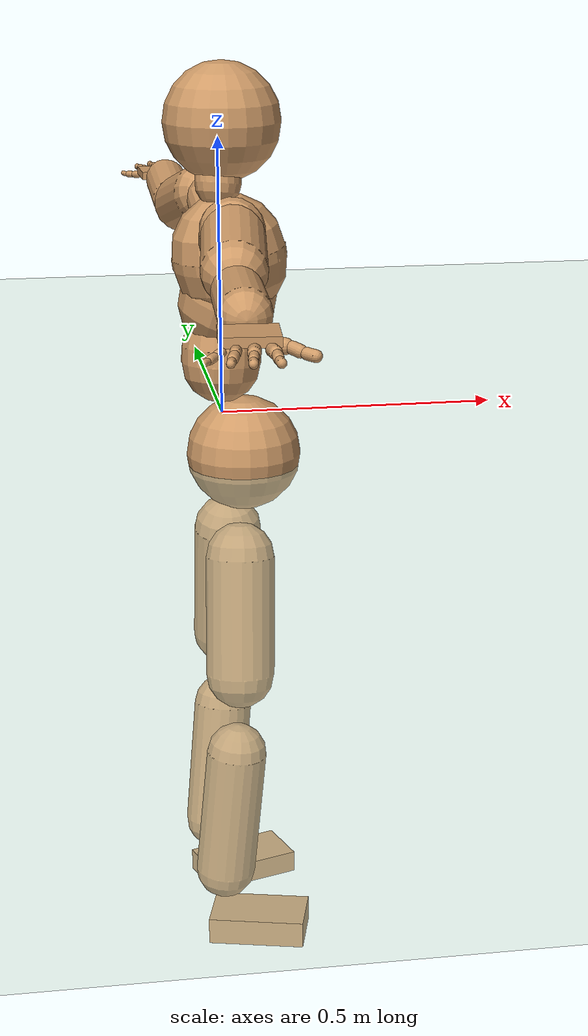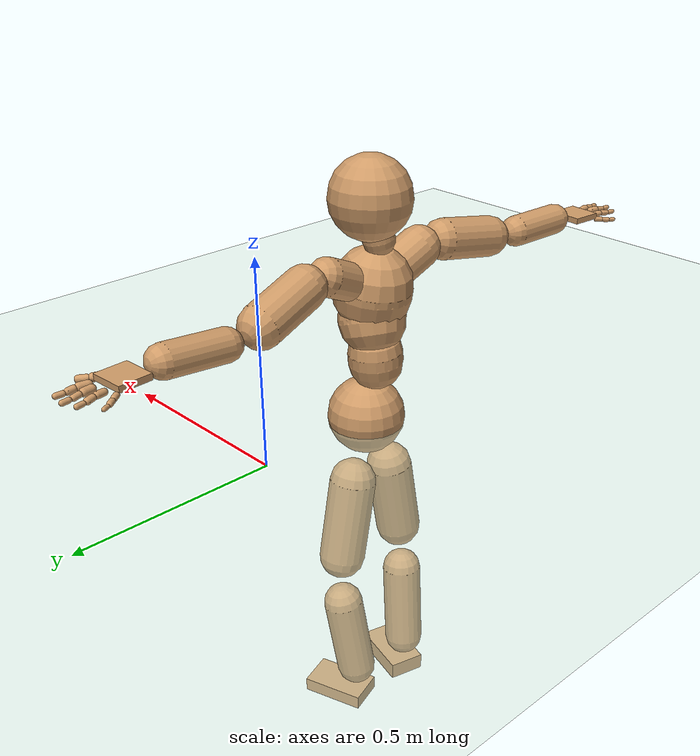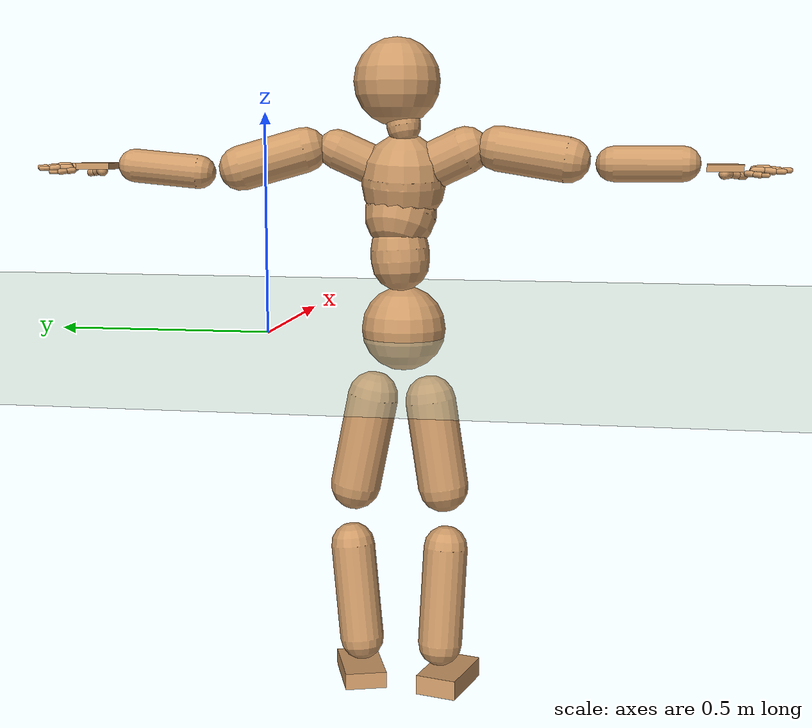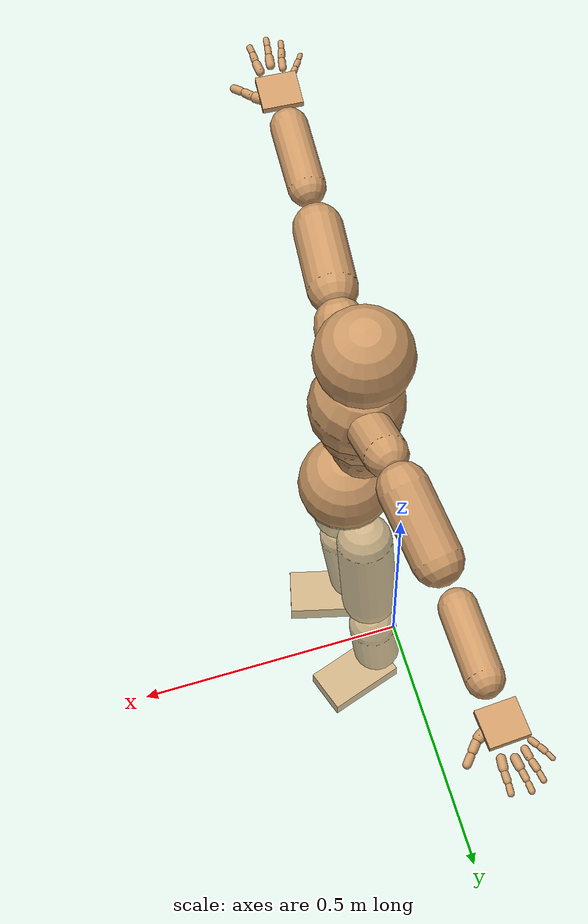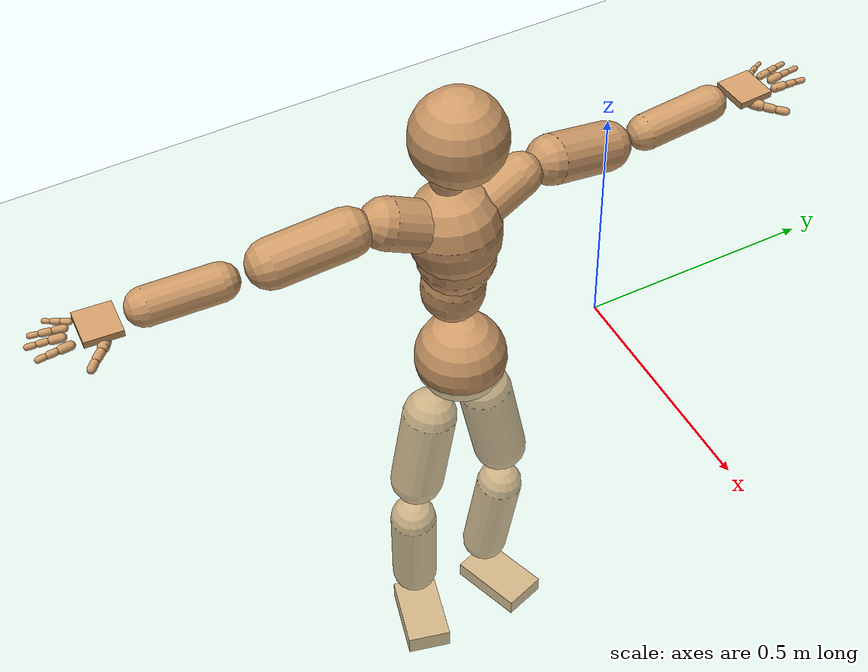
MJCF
<mujoco model="humanoid">
  <compiler coordinate="local" angle="radian"/>
  <default>
    <joint damping="0.0" armature="0.01" stiffness="0.0" limited="true"/>
    <geom conaffinity="1" condim="3" contype="7" margin="0.001" rgba="0.8 0.6 .4 1"/>
  </default>
  <asset>
    <texture type="skybox" builtin="gradient" rgb1=".4 .5 .6" rgb2="0 0 0" width="100" height="100"/>
    <texture builtin="flat" height="1278" mark="cross" markrgb="1 1 1" name="texgeom" random="0.01" rgb1="0.8 0.6 0.4" rgb2="0.8 0.6 0.4" type="cube" width="127"/>
    <texture builtin="checker" height="100" name="texplane" rgb1="0 0 0" rgb2="0.8 0.8 0.8" type="2d" width="100"/>
    <material name="MatPlane" reflectance="0.5" shininess="1" specular="1" texrepeat="60 60" texture="texplane"/>
    <material name="geom" texture="texgeom" texuniform="true"/>
  </asset>
  <worldbody>
    <light cutoff="100" diffuse="1 1 1" dir="-0 0 -1.3" directional="true" exponent="1" pos="0 0 1.3" specular=".1 .1 .1"/>
    <geom conaffinity="1" condim="3" name="floor" pos="0 0 0" rgba="0.8 0.9 0.8 1" size="100 100 .2" type="plane" material="MatPlane"/>
    <body name="Pelvis" pos="0.001 -0.3171 0.018">
      <freejoint name="Pelvis"/>
      <geom type="sphere" contype="1" conaffinity="1" density="500" size="0.0958" pos="0.0000 0.0000 0.0000" name="Pelvis"/>
      <body name="L_Hip" pos="-0.0211 0.0534 -0.0861">
        <joint name="L_Hip_x" type="hinge" pos="0 0 0" axis="1 0 0" stiffness="800" damping="80" armature="0.02" range="-180.0000 180.0000"/>
        <joint name="L_Hip_y" type="hinge" pos="0 0 0" axis="0 1 0" stiffness="800" damping="80" armature="0.02" range="-180.0000 180.0000"/>
        <joint name="L_Hip_z" type="hinge" pos="0 0 0" axis="0 0 1" stiffness="800" damping="80" armature="0.02" range="-180.0000 180.0000"/>
        <geom type="capsule" contype="1" conaffinity="1" density="500" fromto="-0.0005 0.0136 -0.0695 -0.0019 0.0543 -0.2780" size="0.0576" name="L_Hip"/>
        <body name="L_Knee" pos="-0.0024 0.0679 -0.3475">
          <joint name="L_Knee_x" type="hinge" pos="0 0 0" axis="1 0 0" stiffness="800" damping="80" armature="0.02" range="-180.0000 180.0000"/>
          <joint name="L_Knee_y" type="hinge" pos="0 0 0" axis="0 1 0" stiffness="800" damping="80" armature="0.02" range="-180.0000 180.0000"/>
          <joint name="L_Knee_z" type="hinge" pos="0 0 0" axis="0 0 1" stiffness="800" damping="80" armature="0.02" range="-180.0000 180.0000"/>
          <geom type="capsule" contype="1" conaffinity="1" density="500" fromto="-0.0072 -0.0082 -0.0727 -0.0287 -0.0329 -0.2907" size="0.0505" name="L_Knee"/>
          <body name="L_Ankle" pos="-0.0359 -0.0411 -0.3634">
            <joint name="L_Ankle_x" type="hinge" pos="0 0 0" axis="1 0 0" stiffness="800" damping="80" armature="0.02" range="-180.0000 180.0000"/>
            <joint name="L_Ankle_y" type="hinge" pos="0 0 0" axis="0 1 0" stiffness="800" damping="80" armature="0.02" range="-180.0000 180.0000"/>
            <joint name="L_Ankle_z" type="hinge" pos="0 0 0" axis="0 0 1" stiffness="800" damping="80" armature="0.02" range="-180.0000 180.0000"/>
            <geom type="box" contype="1" conaffinity="1" density="500" pos="0.0600 0.0199 -0.0258" size="0.082 0.0477 0.019" quat="0.9872 0.0000 0.0000 0.1596" name="L_Ankle"/>
            <body name="L_Toe" pos="0.1199 0.0398 -0.0516">
              <joint name="L_Toe_x" type="hinge" pos="0 0 0" axis="1 0 0" stiffness="500" damping="50" armature="0.02" range="-180.0000 180.0000"/>
              <joint name="L_Toe_y" type="hinge" pos="0 0 0" axis="0 1 0" stiffness="500" damping="50" armature="0.02" range="-180.0000 180.0000"/>
              <joint name="L_Toe_z" type="hinge" pos="0 0 0" axis="0 0 1" stiffness="500" damping="50" armature="0.02" range="-180.0000 180.0000"/>
              <geom type="box" contype="1" conaffinity="1" density="500" pos="0.0000 0.0000 0.0270" size="0.001 0.0023 0.001" quat="0.9864 0.0000 0.0000 0.1645" name="L_Toe"/>
            </body>
          </body>
        </body>
      </body>
      <body name="R_Hip" pos="-0.014 -0.0545 -0.0961">
        <joint name="R_Hip_x" type="hinge" pos="0 0 0" axis="1 0 0" stiffness="800" damping="80" armature="0.02" range="-180.0000 180.0000"/>
        <joint name="R_Hip_y" type="hinge" pos="0 0 0" axis="0 1 0" stiffness="800" damping="80" armature="0.02" range="-180.0000 180.0000"/>
        <joint name="R_Hip_z" type="hinge" pos="0 0 0" axis="0 0 1" stiffness="800" damping="80" armature="0.02" range="-180.0000 180.0000"/>
        <geom type="capsule" contype="1" conaffinity="1" density="500" fromto="-0.0020 -0.0105 -0.0665 -0.0080 -0.0420 -0.2662" size="0.0575" name="R_Hip"/>
        <body name="R_Knee" pos="-0.0099 -0.0525 -0.3327">
          <joint name="R_Knee_x" type="hinge" pos="0 0 0" axis="1 0 0" stiffness="800" damping="80" armature="0.02" range="-180.0000 180.0000"/>
          <joint name="R_Knee_y" type="hinge" pos="0 0 0" axis="0 1 0" stiffness="800" damping="80" armature="0.02" range="-180.0000 180.0000"/>
          <joint name="R_Knee_z" type="hinge" pos="0 0 0" axis="0 0 1" stiffness="800" damping="80" armature="0.02" range="-180.0000 180.0000"/>
          <geom type="capsule" contype="1" conaffinity="1" density="500" fromto="-0.0072 0.0029 -0.0749 -0.0286 0.0117 -0.2995" size="0.0505" name="R_Knee"/>
          <body name="R_Ankle" pos="-0.0358 0.0146 -0.3744">
            <joint name="R_Ankle_x" type="hinge" pos="0 0 0" axis="1 0 0" stiffness="800" damping="80" armature="0.02" range="-180.0000 180.0000"/>
            <joint name="R_Ankle_y" type="hinge" pos="0 0 0" axis="0 1 0" stiffness="800" damping="80" armature="0.02" range="-180.0000 180.0000"/>
            <joint name="R_Ankle_z" type="hinge" pos="0 0 0" axis="0 0 1" stiffness="800" damping="80" armature="0.02" range="-180.0000 180.0000"/>
            <geom type="box" contype="1" conaffinity="1" density="500" pos="0.0633 -0.0162 -0.0257" size="0.082 0.0477 0.0228" quat="0.9921 0.0000 0.0000 -0.1252" name="R_Ankle"/>
            <body name="R_Toe" pos="0.1265 -0.0324 -0.0513">
              <joint name="R_Toe_x" type="hinge" pos="0 0 0" axis="1 0 0" stiffness="500" damping="50" armature="0.02" range="-180.0000 180.0000"/>
              <joint name="R_Toe_y" type="hinge" pos="0 0 0" axis="0 1 0" stiffness="500" damping="50" armature="0.02" range="-180.0000 180.0000"/>
              <joint name="R_Toe_z" type="hinge" pos="0 0 0" axis="0 0 1" stiffness="500" damping="50" armature="0.02" range="-180.0000 180.0000"/>
              <geom type="box" contype="1" conaffinity="1" density="500" pos="0.0000 0.0000 0.0230" size="0.001 0.0023 0.001" quat="0.9932 0.0000 0.0000 -0.1160" name="R_Toe"/>
            </body>
          </body>
        </body>
      </body>
      <body name="Torso" pos="-0.0372 -0.0013 0.1002">
        <joint name="Torso_x" type="hinge" pos="0 0 0" axis="1 0 0" stiffness="1000" damping="100" armature="0.02" range="-180.0000 180.0000"/>
        <joint name="Torso_y" type="hinge" pos="0 0 0" axis="0 1 0" stiffness="1000" damping="100" armature="0.02" range="-180.0000 180.0000"/>
        <joint name="Torso_z" type="hinge" pos="0 0 0" axis="0 0 1" stiffness="1000" damping="100" armature="0.02" range="-180.0000 180.0000"/>
        <geom type="capsule" contype="1" conaffinity="1" density="500" fromto="0.0029 0.0052 0.0820 0.0019 0.0035 0.0547" size="0.0656" name="Torso"/>
        <body name="Spine" pos="0.0048 0.0087 0.1367">
          <joint name="Spine_x" type="hinge" pos="0 0 0" axis="1 0 0" stiffness="1000" damping="100" armature="0.02" range="-180.0000 180.0000"/>
          <joint name="Spine_y" type="hinge" pos="0 0 0" axis="0 1 0" stiffness="1000" damping="100" armature="0.02" range="-180.0000 180.0000"/>
          <joint name="Spine_z" type="hinge" pos="0 0 0" axis="0 0 1" stiffness="1000" damping="100" armature="0.02" range="-180.0000 180.0000"/>
          <geom type="capsule" contype="1" conaffinity="1" density="500" fromto="0.0115 -0.0047 0.0307 0.0076 -0.0032 0.0204" size="0.0801" name="Spine"/>
          <body name="Chest" pos="0.0191 -0.0079 0.0511">
            <joint name="Chest_x" type="hinge" pos="0 0 0" axis="1 0 0" stiffness="1000" damping="100" armature="0.02" range="-180.0000 180.0000"/>
            <joint name="Chest_y" type="hinge" pos="0 0 0" axis="0 1 0" stiffness="1000" damping="100" armature="0.02" range="-180.0000 180.0000"/>
            <joint name="Chest_z" type="hinge" pos="0 0 0" axis="0 0 1" stiffness="1000" damping="100" armature="0.02" range="-180.0000 180.0000"/>
            <geom type="capsule" contype="1" conaffinity="1" density="500" fromto="-0.0075 -0.0021 0.0545 -0.0050 -0.0014 0.0364" size="0.0938" name="Chest"/>
            <body name="Neck" pos="-0.0252 -0.0084 0.1398">
              <joint name="Neck_x" type="hinge" pos="0 0 0" axis="1 0 0" stiffness="500" damping="50" armature="0.02" range="-180.0000 180.0000"/>
              <joint name="Neck_y" type="hinge" pos="0 0 0" axis="0 1 0" stiffness="500" damping="50" armature="0.02" range="-180.0000 180.0000"/>
              <joint name="Neck_z" type="hinge" pos="0 0 0" axis="0 0 1" stiffness="500" damping="50" armature="0.02" range="-180.0000 180.0000"/>
              <geom type="capsule" contype="1" conaffinity="1" density="500" fromto="0.0024 0.0042 0.0241 0.0096 0.0168 0.0965" size="0.0379" name="Neck"/>
              <body name="Head" pos="0.0121 0.021 0.1207">
                <joint name="Head_x" type="hinge" pos="0 0 0" axis="1 0 0" stiffness="500" damping="50" armature="0.02" range="-180.0000 180.0000"/>
                <joint name="Head_y" type="hinge" pos="0 0 0" axis="0 1 0" stiffness="500" damping="50" armature="0.02" range="-180.0000 180.0000"/>
                <joint name="Head_z" type="hinge" pos="0 0 0" axis="0 0 1" stiffness="500" damping="50" armature="0.02" range="-180.0000 180.0000"/>
                <geom type="sphere" contype="1" conaffinity="1" density="500" size="0.0962" pos="0.0000 0.0000 0.0000" name="Head"/>
              </body>
            </body>
            <body name="L_Thorax" pos="-0.0046 0.04 0.0662">
              <joint name="L_Thorax_x" type="hinge" pos="0 0 0" axis="1 0 0" stiffness="500" damping="50" armature="0.02" range="-180.0000 180.0000"/>
              <joint name="L_Thorax_y" type="hinge" pos="0 0 0" axis="0 1 0" stiffness="500" damping="50" armature="0.02" range="-180.0000 180.0000"/>
              <joint name="L_Thorax_z" type="hinge" pos="0 0 0" axis="0 0 1" stiffness="500" damping="50" armature="0.02" range="-180.0000 180.0000"/>
              <geom type="capsule" contype="1" conaffinity="1" density="500" fromto="-0.0027 0.0264 0.0119 -0.0108 0.1055 0.0476" size="0.0443" name="L_Thorax"/>
              <body name="L_Shoulder" pos="-0.0135 0.1318 0.0595">
                <joint name="L_Shoulder_x" type="hinge" pos="0 0 0" axis="1 0 0" stiffness="500" damping="50" armature="0.02" range="-180.0000 180.0000"/>
                <joint name="L_Shoulder_y" type="hinge" pos="0 0 0" axis="0 1 0" stiffness="500" damping="50" armature="0.02" range="-180.0000 180.0000"/>
                <joint name="L_Shoulder_z" type="hinge" pos="0 0 0" axis="0 0 1" stiffness="500" damping="50" armature="0.02" range="-180.0000 180.0000"/>
                <geom type="capsule" contype="1" conaffinity="1" density="500" fromto="-0.0075 0.0465 -0.0133 -0.0300 0.1859 -0.0534" size="0.0505" name="L_Shoulder"/>
                <body name="L_Elbow" pos="-0.0375 0.2324 -0.0667">
                  <joint name="L_Elbow_x" type="hinge" pos="0 0 0" axis="1 0 0" stiffness="500" damping="50" armature="0.02" range="-720.0000 720.0000"/>
                  <joint name="L_Elbow_y" type="hinge" pos="0 0 0" axis="0 1 0" stiffness="500" damping="50" armature="0.02" range="-720.0000 720.0000"/>
                  <joint name="L_Elbow_z" type="hinge" pos="0 0 0" axis="0 0 1" stiffness="500" damping="50" armature="0.02" range="-720.0000 720.0000"/>
                  <geom type="capsule" contype="1" conaffinity="1" density="500" fromto="-0.0004 0.0494 0.0046 -0.0016 0.1978 0.0182" size="0.0373" name="L_Elbow"/>
                  <body name="L_Wrist" pos="-0.002 0.2472 0.0228">
                    <joint name="L_Wrist_x" type="hinge" pos="0 0 0" axis="1 0 0" stiffness="300" damping="30" armature="0.02" range="-180.0000 180.0000"/>
                    <joint name="L_Wrist_y" type="hinge" pos="0 0 0" axis="0 1 0" stiffness="300" damping="30" armature="0.02" range="-180.0000 180.0000"/>
                    <joint name="L_Wrist_z" type="hinge" pos="0 0 0" axis="0 0 1" stiffness="300" damping="30" armature="0.02" range="-180.0000 180.0000"/>
                    <geom type="box" contype="1" conaffinity="1" density="500" pos="-0.0024 0.0398 -0.0058" size="0.0379 0.0397 0.0072" quat="0.7284 0.0000 0.0000 -0.6852" name="L_Wrist"/>
                    <body name="L_Index1" pos="0.0193 0.0934 -0.0091">
                      <joint name="L_Index1_x" type="hinge" pos="0 0 0" axis="1 0 0" stiffness="100" damping="10" armature="0.02" range="-180.0000 180.0000"/>
                      <joint name="L_Index1_y" type="hinge" pos="0 0 0" axis="0 1 0" stiffness="100" damping="10" armature="0.02" range="-180.0000 180.0000"/>
                      <joint name="L_Index1_z" type="hinge" pos="0 0 0" axis="0 0 1" stiffness="100" damping="10" armature="0.02" range="-180.0000 180.0000"/>
                      <geom type="capsule" contype="1" conaffinity="1" density="500" fromto="0.0007 0.0062 0.0002 0.0026 0.0246 0.0008" size="0.0089" name="L_Index1"/>
                      <body name="L_Index2" pos="0.0033 0.0308 0.0011">
                        <joint name="L_Index2_x" type="hinge" pos="0 0 0" axis="1 0 0" stiffness="100" damping="10" armature="0.02" range="-180.0000 180.0000"/>
                        <joint name="L_Index2_y" type="hinge" pos="0 0 0" axis="0 1 0" stiffness="100" damping="10" armature="0.02" range="-180.0000 180.0000"/>
                        <joint name="L_Index2_z" type="hinge" pos="0 0 0" axis="0 0 1" stiffness="100" damping="10" armature="0.02" range="-180.0000 180.0000"/>
                        <geom type="capsule" contype="1" conaffinity="1" density="500" fromto="-0.0001 0.0044 -0.0005 -0.0003 0.0175 -0.0021" size="0.0073" name="L_Index2"/>
                        <body name="L_Index3" pos="-0.0004 0.0218 -0.0026">
                          <joint name="L_Index3_x" type="hinge" pos="0 0 0" axis="1 0 0" stiffness="100" damping="10" armature="0.02" range="-180.0000 180.0000"/>
                          <joint name="L_Index3_y" type="hinge" pos="0 0 0" axis="0 1 0" stiffness="100" damping="10" armature="0.02" range="-180.0000 180.0000"/>
                          <joint name="L_Index3_z" type="hinge" pos="0 0 0" axis="0 0 1" stiffness="100" damping="10" armature="0.02" range="-180.0000 180.0000"/>
                          <geom type="capsule" contype="1" conaffinity="1" density="500" fromto="0.0003 0.0048 -0.0001 0.0013 0.0191 -0.0005" size="0.0062" name="L_Index3"/>
                        </body>
                      </body>
                    </body>
                    <body name="L_Middle1" pos="-0.0028 0.1007 -0.0068">
                      <joint name="L_Middle1_x" type="hinge" pos="0 0 0" axis="1 0 0" stiffness="100" damping="10" armature="0.02" range="-180.0000 180.0000"/>
                      <joint name="L_Middle1_y" type="hinge" pos="0 0 0" axis="0 1 0" stiffness="100" damping="10" armature="0.02" range="-180.0000 180.0000"/>
                      <joint name="L_Middle1_z" type="hinge" pos="0 0 0" axis="0 0 1" stiffness="100" damping="10" armature="0.02" range="-180.0000 180.0000"/>
                      <geom type="capsule" contype="1" conaffinity="1" density="500" fromto="-0.0008 0.0059 0.0000 -0.0032 0.0236 0.0002" size="0.0089" name="L_Middle1"/>
                      <body name="L_Middle2" pos="-0.004 0.0295 0.0002">
                        <joint name="L_Middle2_x" type="hinge" pos="0 0 0" axis="1 0 0" stiffness="100" damping="10" armature="0.02" range="-180.0000 180.0000"/>
                        <joint name="L_Middle2_y" type="hinge" pos="0 0 0" axis="0 1 0" stiffness="100" damping="10" armature="0.02" range="-180.0000 180.0000"/>
                        <joint name="L_Middle2_z" type="hinge" pos="0 0 0" axis="0 0 1" stiffness="100" damping="10" armature="0.02" range="-180.0000 180.0000"/>
                        <geom type="capsule" contype="1" conaffinity="1" density="500" fromto="-0.0008 0.0045 -0.0004 -0.0033 0.0180 -0.0018" size="0.0067" name="L_Middle2"/>
                        <body name="L_Middle3" pos="-0.0041 0.0225 -0.0022">
                          <joint name="L_Middle3_x" type="hinge" pos="0 0 0" axis="1 0 0" stiffness="100" damping="10" armature="0.02" range="-180.0000 180.0000"/>
                          <joint name="L_Middle3_y" type="hinge" pos="0 0 0" axis="0 1 0" stiffness="100" damping="10" armature="0.02" range="-180.0000 180.0000"/>
                          <joint name="L_Middle3_z" type="hinge" pos="0 0 0" axis="0 0 1" stiffness="100" damping="10" armature="0.02" range="-180.0000 180.0000"/>
                          <geom type="capsule" contype="1" conaffinity="1" density="500" fromto="-0.0004 0.0049 -0.0000 -0.0017 0.0196 -0.0002" size="0.0059" name="L_Middle3"/>
                        </body>
                      </body>
                    </body>
                    <body name="L_Pinky1" pos="-0.0404 0.0774 -0.0145">
                      <joint name="L_Pinky1_x" type="hinge" pos="0 0 0" axis="1 0 0" stiffness="100" damping="10" armature="0.02" range="-180.0000 180.0000"/>
                      <joint name="L_Pinky1_y" type="hinge" pos="0 0 0" axis="0 1 0" stiffness="100" damping="10" armature="0.02" range="-180.0000 180.0000"/>
                      <joint name="L_Pinky1_z" type="hinge" pos="0 0 0" axis="0 0 1" stiffness="100" damping="10" armature="0.02" range="-180.0000 180.0000"/>
                      <geom type="capsule" contype="1" conaffinity="1" density="500" fromto="-0.0023 0.0032 -0.0003 -0.0090 0.0128 -0.0013" size="0.0065" name="L_Pinky1"/>
                      <body name="L_Pinky2" pos="-0.0113 0.0159 -0.0016">
                        <joint name="L_Pinky2_x" type="hinge" pos="0 0 0" axis="1 0 0" stiffness="100" damping="10" armature="0.02" range="-180.0000 180.0000"/>
                        <joint name="L_Pinky2_y" type="hinge" pos="0 0 0" axis="0 1 0" stiffness="100" damping="10" armature="0.02" range="-180.0000 180.0000"/>
                        <joint name="L_Pinky2_z" type="hinge" pos="0 0 0" axis="0 0 1" stiffness="100" damping="10" armature="0.02" range="-180.0000 180.0000"/>
                        <geom type="capsule" contype="1" conaffinity="1" density="500" fromto="-0.0021 0.0031 -0.0004 -0.0085 0.0125 -0.0015" size="0.0062" name="L_Pinky2"/>
                        <body name="L_Pinky3" pos="-0.0106 0.0156 -0.0019">
                          <joint name="L_Pinky3_x" type="hinge" pos="0 0 0" axis="1 0 0" stiffness="100" damping="10" armature="0.02" range="-180.0000 180.0000"/>
                          <joint name="L_Pinky3_y" type="hinge" pos="0 0 0" axis="0 1 0" stiffness="100" damping="10" armature="0.02" range="-180.0000 180.0000"/>
                          <joint name="L_Pinky3_z" type="hinge" pos="0 0 0" axis="0 0 1" stiffness="100" damping="10" armature="0.02" range="-180.0000 180.0000"/>
                          <geom type="capsule" contype="1" conaffinity="1" density="500" fromto="-0.0017 0.0035 0.0000 -0.0069 0.0141 0.0001" size="0.0047" name="L_Pinky3"/>
                        </body>
                      </body>
                    </body>
                    <body name="L_Ring1" pos="-0.0247 0.0896 -0.0094">
                      <joint name="L_Ring1_x" type="hinge" pos="0 0 0" axis="1 0 0" stiffness="100" damping="10" armature="0.02" range="-180.0000 180.0000"/>
                      <joint name="L_Ring1_y" type="hinge" pos="0 0 0" axis="0 1 0" stiffness="100" damping="10" armature="0.02" range="-180.0000 180.0000"/>
                      <joint name="L_Ring1_z" type="hinge" pos="0 0 0" axis="0 0 1" stiffness="100" damping="10" armature="0.02" range="-180.0000 180.0000"/>
                      <geom type="capsule" contype="1" conaffinity="1" density="500" fromto="-0.0009 0.0055 0.0001 -0.0038 0.0219 0.0004" size="0.0076" name="L_Ring1"/>
                      <body name="L_Ring2" pos="-0.0047 0.0273 0.0005">
                        <joint name="L_Ring2_x" type="hinge" pos="0 0 0" axis="1 0 0" stiffness="100" damping="10" armature="0.02" range="-180.0000 180.0000"/>
                        <joint name="L_Ring2_y" type="hinge" pos="0 0 0" axis="0 1 0" stiffness="100" damping="10" armature="0.02" range="-180.0000 180.0000"/>
                        <joint name="L_Ring2_z" type="hinge" pos="0 0 0" axis="0 0 1" stiffness="100" damping="10" armature="0.02" range="-180.0000 180.0000"/>
                        <geom type="capsule" contype="1" conaffinity="1" density="500" fromto="-0.0013 0.0045 -0.0004 -0.0051 0.0178 -0.0017" size="0.0072" name="L_Ring2"/>
                        <body name="L_Ring3" pos="-0.0063 0.0223 -0.0021">
                          <joint name="L_Ring3_x" type="hinge" pos="0 0 0" axis="1 0 0" stiffness="100" damping="10" armature="0.02" range="-180.0000 180.0000"/>
                          <joint name="L_Ring3_y" type="hinge" pos="0 0 0" axis="0 1 0" stiffness="100" damping="10" armature="0.02" range="-180.0000 180.0000"/>
                          <joint name="L_Ring3_z" type="hinge" pos="0 0 0" axis="0 0 1" stiffness="100" damping="10" armature="0.02" range="-180.0000 180.0000"/>
                          <geom type="capsule" contype="1" conaffinity="1" density="500" fromto="-0.0009 0.0049 -0.0000 -0.0035 0.0194 -0.0001" size="0.0056" name="L_Ring3"/>
                        </body>
                      </body>
                    </body>
                    <body name="L_Thumb1" pos="0.0243 0.0366 -0.0186">
                      <joint name="L_Thumb1_x" type="hinge" pos="0 0 0" axis="1 0 0" stiffness="100" damping="10" armature="0.02" range="-180.0000 180.0000"/>
                      <joint name="L_Thumb1_y" type="hinge" pos="0 0 0" axis="0 1 0" stiffness="100" damping="10" armature="0.02" range="-180.0000 180.0000"/>
                      <joint name="L_Thumb1_z" type="hinge" pos="0 0 0" axis="0 0 1" stiffness="100" damping="10" armature="0.02" range="-180.0000 180.0000"/>
                      <geom type="capsule" contype="1" conaffinity="1" density="500" fromto="0.0049 0.0032 0.0003 0.0195 0.0126 0.0013" size="0.0113" name="L_Thumb1"/>
                      <body name="L_Thumb2" pos="0.0244 0.0158 0.0016">
                        <joint name="L_Thumb2_x" type="hinge" pos="0 0 0" axis="1 0 0" stiffness="100" damping="10" armature="0.02" range="-180.0000 180.0000"/>
                        <joint name="L_Thumb2_y" type="hinge" pos="0 0 0" axis="0 1 0" stiffness="100" damping="10" armature="0.02" range="-180.0000 180.0000"/>
                        <joint name="L_Thumb2_z" type="hinge" pos="0 0 0" axis="0 0 1" stiffness="100" damping="10" armature="0.02" range="-180.0000 180.0000"/>
                        <geom type="capsule" contype="1" conaffinity="1" density="500" fromto="0.0031 0.0038 -0.0009 0.0125 0.0152 -0.0034" size="0.0091" name="L_Thumb2"/>
                        <body name="L_Thumb3" pos="0.0156 0.0191 -0.0043">
                          <joint name="L_Thumb3_x" type="hinge" pos="0 0 0" axis="1 0 0" stiffness="100" damping="10" armature="0.02" range="-180.0000 180.0000"/>
                          <joint name="L_Thumb3_y" type="hinge" pos="0 0 0" axis="0 1 0" stiffness="100" damping="10" armature="0.02" range="-180.0000 180.0000"/>
                          <joint name="L_Thumb3_z" type="hinge" pos="0 0 0" axis="0 0 1" stiffness="100" damping="10" armature="0.02" range="-180.0000 180.0000"/>
                          <geom type="capsule" contype="1" conaffinity="1" density="500" fromto="0.0035 0.0042 -0.0005 0.0141 0.0168 -0.0018" size="0.0083" name="L_Thumb3"/>
                        </body>
                      </body>
                    </body>
                  </body>
                </body>
              </body>
            </body>
            <body name="R_Thorax" pos="-0.0075 -0.0423 0.0667">
              <joint name="R_Thorax_x" type="hinge" pos="0 0 0" axis="1 0 0" stiffness="500" damping="50" armature="0.02" range="-180.0000 180.0000"/>
              <joint name="R_Thorax_y" type="hinge" pos="0 0 0" axis="0 1 0" stiffness="500" damping="50" armature="0.02" range="-180.0000 180.0000"/>
              <joint name="R_Thorax_z" type="hinge" pos="0 0 0" axis="0 0 1" stiffness="500" damping="50" armature="0.02" range="-180.0000 180.0000"/>
              <geom type="capsule" contype="1" conaffinity="1" density="500" fromto="-0.0022 -0.0244 0.0114 -0.0087 -0.0977 0.0457" size="0.052" name="R_Thorax"/>
              <body name="R_Shoulder" pos="-0.0109 -0.1221 0.0571">
                <joint name="R_Shoulder_x" type="hinge" pos="0 0 0" axis="1 0 0" stiffness="500" damping="50" armature="0.02" range="-180.0000 180.0000"/>
                <joint name="R_Shoulder_y" type="hinge" pos="0 0 0" axis="0 1 0" stiffness="500" damping="50" armature="0.02" range="-180.0000 180.0000"/>
                <joint name="R_Shoulder_z" type="hinge" pos="0 0 0" axis="0 0 1" stiffness="500" damping="50" armature="0.02" range="-180.0000 180.0000"/>
                <geom type="capsule" contype="1" conaffinity="1" density="500" fromto="-0.0053 -0.0497 -0.0079 -0.0211 -0.1986 -0.0314" size="0.0498" name="R_Shoulder"/>
                <body name="R_Elbow" pos="-0.0263 -0.2483 -0.0393">
                  <joint name="R_Elbow_x" type="hinge" pos="0 0 0" axis="1 0 0" stiffness="500" damping="50" armature="0.02" range="-720.0000 720.0000"/>
                  <joint name="R_Elbow_y" type="hinge" pos="0 0 0" axis="0 1 0" stiffness="500" damping="50" armature="0.02" range="-720.0000 720.0000"/>
                  <joint name="R_Elbow_z" type="hinge" pos="0 0 0" axis="0 0 1" stiffness="500" damping="50" armature="0.02" range="-720.0000 720.0000"/>
                  <geom type="capsule" contype="1" conaffinity="1" density="500" fromto="-0.0023 -0.0480 0.0001 -0.0093 -0.1919 0.0004" size="0.0382" name="R_Elbow"/>
                  <body name="R_Wrist" pos="-0.0116 -0.2399 0.0005">
                    <joint name="R_Wrist_x" type="hinge" pos="0 0 0" axis="1 0 0" stiffness="300" damping="30" armature="0.02" range="-180.0000 180.0000"/>
                    <joint name="R_Wrist_y" type="hinge" pos="0 0 0" axis="0 1 0" stiffness="300" damping="30" armature="0.02" range="-180.0000 180.0000"/>
                    <joint name="R_Wrist_z" type="hinge" pos="0 0 0" axis="0 0 1" stiffness="300" damping="30" armature="0.02" range="-180.0000 180.0000"/>
                    <geom type="box" contype="1" conaffinity="1" density="500" pos="-0.0030 -0.0397 -0.0075" size="0.0379 0.0409 0.0073" quat="0.7332 0.0000 0.0000 0.6800" name="R_Wrist"/>
                    <body name="R_Index1" pos="0.0182 -0.0932 -0.0124">
                      <joint name="R_Index1_x" type="hinge" pos="0 0 0" axis="1 0 0" stiffness="100" damping="10" armature="0.02" range="-180.0000 180.0000"/>
                      <joint name="R_Index1_y" type="hinge" pos="0 0 0" axis="0 1 0" stiffness="100" damping="10" armature="0.02" range="-180.0000 180.0000"/>
                      <joint name="R_Index1_z" type="hinge" pos="0 0 0" axis="0 0 1" stiffness="100" damping="10" armature="0.02" range="-180.0000 180.0000"/>
                      <geom type="capsule" contype="1" conaffinity="1" density="500" fromto="0.0007 -0.0062 0.0002 0.0026 -0.0246 0.0008" size="0.0089" name="R_Index1"/>
                      <body name="R_Index2" pos="0.0033 -0.0308 0.0011">
                        <joint name="R_Index2_x" type="hinge" pos="0 0 0" axis="1 0 0" stiffness="100" damping="10" armature="0.02" range="-180.0000 180.0000"/>
                        <joint name="R_Index2_y" type="hinge" pos="0 0 0" axis="0 1 0" stiffness="100" damping="10" armature="0.02" range="-180.0000 180.0000"/>
                        <joint name="R_Index2_z" type="hinge" pos="0 0 0" axis="0 0 1" stiffness="100" damping="10" armature="0.02" range="-180.0000 180.0000"/>
                        <geom type="capsule" contype="1" conaffinity="1" density="500" fromto="-0.0001 -0.0044 -0.0005 -0.0003 -0.0175 -0.0021" size="0.0073" name="R_Index2"/>
                        <body name="R_Index3" pos="-0.0004 -0.0218 -0.0026">
                          <joint name="R_Index3_x" type="hinge" pos="0 0 0" axis="1 0 0" stiffness="100" damping="10" armature="0.02" range="-180.0000 180.0000"/>
                          <joint name="R_Index3_y" type="hinge" pos="0 0 0" axis="0 1 0" stiffness="100" damping="10" armature="0.02" range="-180.0000 180.0000"/>
                          <joint name="R_Index3_z" type="hinge" pos="0 0 0" axis="0 0 1" stiffness="100" damping="10" armature="0.02" range="-180.0000 180.0000"/>
                          <geom type="capsule" contype="1" conaffinity="1" density="500" fromto="0.0003 -0.0040 -0.0001 0.0013 -0.0159 -0.0005" size="0.0065" name="R_Index3"/>
                        </body>
                      </body>
                    </body>
                    <body name="R_Middle1" pos="-0.0039 -0.1005 -0.0101">
                      <joint name="R_Middle1_x" type="hinge" pos="0 0 0" axis="1 0 0" stiffness="100" damping="10" armature="0.02" range="-180.0000 180.0000"/>
                      <joint name="R_Middle1_y" type="hinge" pos="0 0 0" axis="0 1 0" stiffness="100" damping="10" armature="0.02" range="-180.0000 180.0000"/>
                      <joint name="R_Middle1_z" type="hinge" pos="0 0 0" axis="0 0 1" stiffness="100" damping="10" armature="0.02" range="-180.0000 180.0000"/>
                      <geom type="capsule" contype="1" conaffinity="1" density="500" fromto="-0.0008 -0.0059 0.0000 -0.0032 -0.0236 0.0002" size="0.0089" name="R_Middle1"/>
                      <body name="R_Middle2" pos="-0.004 -0.0295 0.0002">
                        <joint name="R_Middle2_x" type="hinge" pos="0 0 0" axis="1 0 0" stiffness="100" damping="10" armature="0.02" range="-180.0000 180.0000"/>
                        <joint name="R_Middle2_y" type="hinge" pos="0 0 0" axis="0 1 0" stiffness="100" damping="10" armature="0.02" range="-180.0000 180.0000"/>
                        <joint name="R_Middle2_z" type="hinge" pos="0 0 0" axis="0 0 1" stiffness="100" damping="10" armature="0.02" range="-180.0000 180.0000"/>
                        <geom type="capsule" contype="1" conaffinity="1" density="500" fromto="-0.0008 -0.0045 -0.0004 -0.0033 -0.0180 -0.0018" size="0.0067" name="R_Middle2"/>
                        <body name="R_Middle3" pos="-0.0041 -0.0225 -0.0022">
                          <joint name="R_Middle3_x" type="hinge" pos="0 0 0" axis="1 0 0" stiffness="100" damping="10" armature="0.02" range="-180.0000 180.0000"/>
                          <joint name="R_Middle3_y" type="hinge" pos="0 0 0" axis="0 1 0" stiffness="100" damping="10" armature="0.02" range="-180.0000 180.0000"/>
                          <joint name="R_Middle3_z" type="hinge" pos="0 0 0" axis="0 0 1" stiffness="100" damping="10" armature="0.02" range="-180.0000 180.0000"/>
                          <geom type="capsule" contype="1" conaffinity="1" density="500" fromto="-0.0004 -0.0041 -0.0000 -0.0017 -0.0164 -0.0002" size="0.0062" name="R_Middle3"/>
                        </body>
                      </body>
                    </body>
                    <body name="R_Pinky1" pos="-0.0415 -0.0772 -0.0178">
                      <joint name="R_Pinky1_x" type="hinge" pos="0 0 0" axis="1 0 0" stiffness="100" damping="10" armature="0.02" range="-180.0000 180.0000"/>
                      <joint name="R_Pinky1_y" type="hinge" pos="0 0 0" axis="0 1 0" stiffness="100" damping="10" armature="0.02" range="-180.0000 180.0000"/>
                      <joint name="R_Pinky1_z" type="hinge" pos="0 0 0" axis="0 0 1" stiffness="100" damping="10" armature="0.02" range="-180.0000 180.0000"/>
                      <geom type="capsule" contype="1" conaffinity="1" density="500" fromto="-0.0023 -0.0032 -0.0003 -0.0090 -0.0128 -0.0013" size="0.0065" name="R_Pinky1"/>
                      <body name="R_Pinky2" pos="-0.0113 -0.0159 -0.0016">
                        <joint name="R_Pinky2_x" type="hinge" pos="0 0 0" axis="1 0 0" stiffness="100" damping="10" armature="0.02" range="-180.0000 180.0000"/>
                        <joint name="R_Pinky2_y" type="hinge" pos="0 0 0" axis="0 1 0" stiffness="100" damping="10" armature="0.02" range="-180.0000 180.0000"/>
                        <joint name="R_Pinky2_z" type="hinge" pos="0 0 0" axis="0 0 1" stiffness="100" damping="10" armature="0.02" range="-180.0000 180.0000"/>
                        <geom type="capsule" contype="1" conaffinity="1" density="500" fromto="-0.0021 -0.0031 -0.0004 -0.0085 -0.0125 -0.0015" size="0.0062" name="R_Pinky2"/>
                        <body name="R_Pinky3" pos="-0.0106 -0.0156 -0.0019">
                          <joint name="R_Pinky3_x" type="hinge" pos="0 0 0" axis="1 0 0" stiffness="100" damping="10" armature="0.02" range="-180.0000 180.0000"/>
                          <joint name="R_Pinky3_y" type="hinge" pos="0 0 0" axis="0 1 0" stiffness="100" damping="10" armature="0.02" range="-180.0000 180.0000"/>
                          <joint name="R_Pinky3_z" type="hinge" pos="0 0 0" axis="0 0 1" stiffness="100" damping="10" armature="0.02" range="-180.0000 180.0000"/>
                          <geom type="capsule" contype="1" conaffinity="1" density="500" fromto="-0.0017 -0.0027 0.0000 -0.0069 -0.0109 0.0001" size="0.005" name="R_Pinky3"/>
                        </body>
                      </body>
                    </body>
                    <body name="R_Ring1" pos="-0.0259 -0.0895 -0.0127">
                      <joint name="R_Ring1_x" type="hinge" pos="0 0 0" axis="1 0 0" stiffness="100" damping="10" armature="0.02" range="-180.0000 180.0000"/>
                      <joint name="R_Ring1_y" type="hinge" pos="0 0 0" axis="0 1 0" stiffness="100" damping="10" armature="0.02" range="-180.0000 180.0000"/>
                      <joint name="R_Ring1_z" type="hinge" pos="0 0 0" axis="0 0 1" stiffness="100" damping="10" armature="0.02" range="-180.0000 180.0000"/>
                      <geom type="capsule" contype="1" conaffinity="1" density="500" fromto="-0.0009 -0.0055 0.0001 -0.0038 -0.0219 0.0004" size="0.0076" name="R_Ring1"/>
                      <body name="R_Ring2" pos="-0.0047 -0.0273 0.0005">
                        <joint name="R_Ring2_x" type="hinge" pos="0 0 0" axis="1 0 0" stiffness="100" damping="10" armature="0.02" range="-180.0000 180.0000"/>
                        <joint name="R_Ring2_y" type="hinge" pos="0 0 0" axis="0 1 0" stiffness="100" damping="10" armature="0.02" range="-180.0000 180.0000"/>
                        <joint name="R_Ring2_z" type="hinge" pos="0 0 0" axis="0 0 1" stiffness="100" damping="10" armature="0.02" range="-180.0000 180.0000"/>
                        <geom type="capsule" contype="1" conaffinity="1" density="500" fromto="-0.0013 -0.0045 -0.0004 -0.0051 -0.0178 -0.0017" size="0.0072" name="R_Ring2"/>
                        <body name="R_Ring3" pos="-0.0063 -0.0223 -0.0021">
                          <joint name="R_Ring3_x" type="hinge" pos="0 0 0" axis="1 0 0" stiffness="100" damping="10" armature="0.02" range="-180.0000 180.0000"/>
                          <joint name="R_Ring3_y" type="hinge" pos="0 0 0" axis="0 1 0" stiffness="100" damping="10" armature="0.02" range="-180.0000 180.0000"/>
                          <joint name="R_Ring3_z" type="hinge" pos="0 0 0" axis="0 0 1" stiffness="100" damping="10" armature="0.02" range="-180.0000 180.0000"/>
                          <geom type="capsule" contype="1" conaffinity="1" density="500" fromto="-0.0009 -0.0041 -0.0000 -0.0035 -0.0162 -0.0001" size="0.0058" name="R_Ring3"/>
                        </body>
                      </body>
                    </body>
                    <body name="R_Thumb1" pos="0.0232 -0.0364 -0.0219">
                      <joint name="R_Thumb1_x" type="hinge" pos="0 0 0" axis="1 0 0" stiffness="100" damping="10" armature="0.02" range="-180.0000 180.0000"/>
                      <joint name="R_Thumb1_y" type="hinge" pos="0 0 0" axis="0 1 0" stiffness="100" damping="10" armature="0.02" range="-180.0000 180.0000"/>
                      <joint name="R_Thumb1_z" type="hinge" pos="0 0 0" axis="0 0 1" stiffness="100" damping="10" armature="0.02" range="-180.0000 180.0000"/>
                      <geom type="capsule" contype="1" conaffinity="1" density="500" fromto="0.0049 -0.0032 0.0003 0.0195 -0.0126 0.0013" size="0.0113" name="R_Thumb1"/>
                      <body name="R_Thumb2" pos="0.0244 -0.0158 0.0016">
                        <joint name="R_Thumb2_x" type="hinge" pos="0 0 0" axis="1 0 0" stiffness="100" damping="10" armature="0.02" range="-180.0000 180.0000"/>
                        <joint name="R_Thumb2_y" type="hinge" pos="0 0 0" axis="0 1 0" stiffness="100" damping="10" armature="0.02" range="-180.0000 180.0000"/>
                        <joint name="R_Thumb2_z" type="hinge" pos="0 0 0" axis="0 0 1" stiffness="100" damping="10" armature="0.02" range="-180.0000 180.0000"/>
                        <geom type="capsule" contype="1" conaffinity="1" density="500" fromto="0.0031 -0.0038 -0.0009 0.0124 -0.0152 -0.0034" size="0.0091" name="R_Thumb2"/>
                        <body name="R_Thumb3" pos="0.0156 -0.0191 -0.0043">
                          <joint name="R_Thumb3_x" type="hinge" pos="0 0 0" axis="1 0 0" stiffness="100" damping="10" armature="0.02" range="-180.0000 180.0000"/>
                          <joint name="R_Thumb3_y" type="hinge" pos="0 0 0" axis="0 1 0" stiffness="100" damping="10" armature="0.02" range="-180.0000 180.0000"/>
                          <joint name="R_Thumb3_z" type="hinge" pos="0 0 0" axis="0 0 1" stiffness="100" damping="10" armature="0.02" range="-180.0000 180.0000"/>
                          <geom type="capsule" contype="1" conaffinity="1" density="500" fromto="0.0035 -0.0034 -0.0005 0.0140 -0.0136 -0.0018" size="0.0085" name="R_Thumb3"/>
                        </body>
                      </body>
                    </body>
                  </body>
                </body>
              </body>
            </body>
          </body>
        </body>
      </body>
    </body>
  </worldbody>
  <actuator>
    <motor name="L_Hip_x" joint="L_Hip_x" gear="500"/>
    <motor name="L_Hip_y" joint="L_Hip_y" gear="500"/>
    <motor name="L_Hip_z" joint="L_Hip_z" gear="500"/>
    <motor name="L_Knee_x" joint="L_Knee_x" gear="500"/>
    <motor name="L_Knee_y" joint="L_Knee_y" gear="500"/>
    <motor name="L_Knee_z" joint="L_Knee_z" gear="500"/>
    <motor name="L_Ankle_x" joint="L_Ankle_x" gear="500"/>
    <motor name="L_Ankle_y" joint="L_Ankle_y" gear="500"/>
    <motor name="L_Ankle_z" joint="L_Ankle_z" gear="500"/>
    <motor name="L_Toe_x" joint="L_Toe_x" gear="500"/>
    <motor name="L_Toe_y" joint="L_Toe_y" gear="500"/>
    <motor name="L_Toe_z" joint="L_Toe_z" gear="500"/>
    <motor name="R_Hip_x" joint="R_Hip_x" gear="500"/>
    <motor name="R_Hip_y" joint="R_Hip_y" gear="500"/>
    <motor name="R_Hip_z" joint="R_Hip_z" gear="500"/>
    <motor name="R_Knee_x" joint="R_Knee_x" gear="500"/>
    <motor name="R_Knee_y" joint="R_Knee_y" gear="500"/>
    <motor name="R_Knee_z" joint="R_Knee_z" gear="500"/>
    <motor name="R_Ankle_x" joint="R_Ankle_x" gear="500"/>
    <motor name="R_Ankle_y" joint="R_Ankle_y" gear="500"/>
    <motor name="R_Ankle_z" joint="R_Ankle_z" gear="500"/>
    <motor name="R_Toe_x" joint="R_Toe_x" gear="500"/>
    <motor name="R_Toe_y" joint="R_Toe_y" gear="500"/>
    <motor name="R_Toe_z" joint="R_Toe_z" gear="500"/>
    <motor name="Torso_x" joint="Torso_x" gear="500"/>
    <motor name="Torso_y" joint="Torso_y" gear="500"/>
    <motor name="Torso_z" joint="Torso_z" gear="500"/>
    <motor name="Spine_x" joint="Spine_x" gear="500"/>
    <motor name="Spine_y" joint="Spine_y" gear="500"/>
    <motor name="Spine_z" joint="Spine_z" gear="500"/>
    <motor name="Chest_x" joint="Chest_x" gear="500"/>
    <motor name="Chest_y" joint="Chest_y" gear="500"/>
    <motor name="Chest_z" joint="Chest_z" gear="500"/>
    <motor name="Neck_x" joint="Neck_x" gear="500"/>
    <motor name="Neck_y" joint="Neck_y" gear="500"/>
    <motor name="Neck_z" joint="Neck_z" gear="500"/>
    <motor name="Head_x" joint="Head_x" gear="500"/>
    <motor name="Head_y" joint="Head_y" gear="500"/>
    <motor name="Head_z" joint="Head_z" gear="500"/>
    <motor name="L_Thorax_x" joint="L_Thorax_x" gear="500"/>
    <motor name="L_Thorax_y" joint="L_Thorax_y" gear="500"/>
    <motor name="L_Thorax_z" joint="L_Thorax_z" gear="500"/>
    <motor name="L_Shoulder_x" joint="L_Shoulder_x" gear="500"/>
    <motor name="L_Shoulder_y" joint="L_Shoulder_y" gear="500"/>
    <motor name="L_Shoulder_z" joint="L_Shoulder_z" gear="500"/>
    <motor name="L_Elbow_x" joint="L_Elbow_x" gear="500"/>
    <motor name="L_Elbow_y" joint="L_Elbow_y" gear="500"/>
    <motor name="L_Elbow_z" joint="L_Elbow_z" gear="500"/>
    <motor name="L_Wrist_x" joint="L_Wrist_x" gear="500"/>
    <motor name="L_Wrist_y" joint="L_Wrist_y" gear="500"/>
    <motor name="L_Wrist_z" joint="L_Wrist_z" gear="500"/>
    <motor name="L_Index1_x" joint="L_Index1_x" gear="500"/>
    <motor name="L_Index1_y" joint="L_Index1_y" gear="500"/>
    <motor name="L_Index1_z" joint="L_Index1_z" gear="500"/>
    <motor name="L_Index2_x" joint="L_Index2_x" gear="500"/>
    <motor name="L_Index2_y" joint="L_Index2_y" gear="500"/>
    <motor name="L_Index2_z" joint="L_Index2_z" gear="500"/>
    <motor name="L_Index3_x" joint="L_Index3_x" gear="500"/>
    <motor name="L_Index3_y" joint="L_Index3_y" gear="500"/>
    <motor name="L_Index3_z" joint="L_Index3_z" gear="500"/>
    <motor name="L_Middle1_x" joint="L_Middle1_x" gear="500"/>
    <motor name="L_Middle1_y" joint="L_Middle1_y" gear="500"/>
    <motor name="L_Middle1_z" joint="L_Middle1_z" gear="500"/>
    <motor name="L_Middle2_x" joint="L_Middle2_x" gear="500"/>
    <motor name="L_Middle2_y" joint="L_Middle2_y" gear="500"/>
    <motor name="L_Middle2_z" joint="L_Middle2_z" gear="500"/>
    <motor name="L_Middle3_x" joint="L_Middle3_x" gear="500"/>
    <motor name="L_Middle3_y" joint="L_Middle3_y" gear="500"/>
    <motor name="L_Middle3_z" joint="L_Middle3_z" gear="500"/>
    <motor name="L_Pinky1_x" joint="L_Pinky1_x" gear="500"/>
    <motor name="L_Pinky1_y" joint="L_Pinky1_y" gear="500"/>
    <motor name="L_Pinky1_z" joint="L_Pinky1_z" gear="500"/>
    <motor name="L_Pinky2_x" joint="L_Pinky2_x" gear="500"/>
    <motor name="L_Pinky2_y" joint="L_Pinky2_y" gear="500"/>
    <motor name="L_Pinky2_z" joint="L_Pinky2_z" gear="500"/>
    <motor name="L_Pinky3_x" joint="L_Pinky3_x" gear="500"/>
    <motor name="L_Pinky3_y" joint="L_Pinky3_y" gear="500"/>
    <motor name="L_Pinky3_z" joint="L_Pinky3_z" gear="500"/>
    <motor name="L_Ring1_x" joint="L_Ring1_x" gear="500"/>
    <motor name="L_Ring1_y" joint="L_Ring1_y" gear="500"/>
    <motor name="L_Ring1_z" joint="L_Ring1_z" gear="500"/>
    <motor name="L_Ring2_x" joint="L_Ring2_x" gear="500"/>
    <motor name="L_Ring2_y" joint="L_Ring2_y" gear="500"/>
    <motor name="L_Ring2_z" joint="L_Ring2_z" gear="500"/>
    <motor name="L_Ring3_x" joint="L_Ring3_x" gear="500"/>
    <motor name="L_Ring3_y" joint="L_Ring3_y" gear="500"/>
    <motor name="L_Ring3_z" joint="L_Ring3_z" gear="500"/>
    <motor name="L_Thumb1_x" joint="L_Thumb1_x" gear="500"/>
    <motor name="L_Thumb1_y" joint="L_Thumb1_y" gear="500"/>
    <motor name="L_Thumb1_z" joint="L_Thumb1_z" gear="500"/>
    <motor name="L_Thumb2_x" joint="L_Thumb2_x" gear="500"/>
    <motor name="L_Thumb2_y" joint="L_Thumb2_y" gear="500"/>
    <motor name="L_Thumb2_z" joint="L_Thumb2_z" gear="500"/>
    <motor name="L_Thumb3_x" joint="L_Thumb3_x" gear="500"/>
    <motor name="L_Thumb3_y" joint="L_Thumb3_y" gear="500"/>
    <motor name="L_Thumb3_z" joint="L_Thumb3_z" gear="500"/>
    <motor name="R_Thorax_x" joint="R_Thorax_x" gear="500"/>
    <motor name="R_Thorax_y" joint="R_Thorax_y" gear="500"/>
    <motor name="R_Thorax_z" joint="R_Thorax_z" gear="500"/>
    <motor name="R_Shoulder_x" joint="R_Shoulder_x" gear="500"/>
    <motor name="R_Shoulder_y" joint="R_Shoulder_y" gear="500"/>
    <motor name="R_Shoulder_z" joint="R_Shoulder_z" gear="500"/>
    <motor name="R_Elbow_x" joint="R_Elbow_x" gear="500"/>
    <motor name="R_Elbow_y" joint="R_Elbow_y" gear="500"/>
    <motor name="R_Elbow_z" joint="R_Elbow_z" gear="500"/>
    <motor name="R_Wrist_x" joint="R_Wrist_x" gear="500"/>
    <motor name="R_Wrist_y" joint="R_Wrist_y" gear="500"/>
    <motor name="R_Wrist_z" joint="R_Wrist_z" gear="500"/>
    <motor name="R_Index1_x" joint="R_Index1_x" gear="500"/>
    <motor name="R_Index1_y" joint="R_Index1_y" gear="500"/>
    <motor name="R_Index1_z" joint="R_Index1_z" gear="500"/>
    <motor name="R_Index2_x" joint="R_Index2_x" gear="500"/>
    <motor name="R_Index2_y" joint="R_Index2_y" gear="500"/>
    <motor name="R_Index2_z" joint="R_Index2_z" gear="500"/>
    <motor name="R_Index3_x" joint="R_Index3_x" gear="500"/>
    <motor name="R_Index3_y" joint="R_Index3_y" gear="500"/>
    <motor name="R_Index3_z" joint="R_Index3_z" gear="500"/>
    <motor name="R_Middle1_x" joint="R_Middle1_x" gear="500"/>
    <motor name="R_Middle1_y" joint="R_Middle1_y" gear="500"/>
    <motor name="R_Middle1_z" joint="R_Middle1_z" gear="500"/>
    <motor name="R_Middle2_x" joint="R_Middle2_x" gear="500"/>
    <motor name="R_Middle2_y" joint="R_Middle2_y" gear="500"/>
    <motor name="R_Middle2_z" joint="R_Middle2_z" gear="500"/>
    <motor name="R_Middle3_x" joint="R_Middle3_x" gear="500"/>
    <motor name="R_Middle3_y" joint="R_Middle3_y" gear="500"/>
    <motor name="R_Middle3_z" joint="R_Middle3_z" gear="500"/>
    <motor name="R_Pinky1_x" joint="R_Pinky1_x" gear="500"/>
    <motor name="R_Pinky1_y" joint="R_Pinky1_y" gear="500"/>
    <motor name="R_Pinky1_z" joint="R_Pinky1_z" gear="500"/>
    <motor name="R_Pinky2_x" joint="R_Pinky2_x" gear="500"/>
    <motor name="R_Pinky2_y" joint="R_Pinky2_y" gear="500"/>
    <motor name="R_Pinky2_z" joint="R_Pinky2_z" gear="500"/>
    <motor name="R_Pinky3_x" joint="R_Pinky3_x" gear="500"/>
    <motor name="R_Pinky3_y" joint="R_Pinky3_y" gear="500"/>
    <motor name="R_Pinky3_z" joint="R_Pinky3_z" gear="500"/>
    <motor name="R_Ring1_x" joint="R_Ring1_x" gear="500"/>
    <motor name="R_Ring1_y" joint="R_Ring1_y" gear="500"/>
    <motor name="R_Ring1_z" joint="R_Ring1_z" gear="500"/>
    <motor name="R_Ring2_x" joint="R_Ring2_x" gear="500"/>
    <motor name="R_Ring2_y" joint="R_Ring2_y" gear="500"/>
    <motor name="R_Ring2_z" joint="R_Ring2_z" gear="500"/>
    <motor name="R_Ring3_x" joint="R_Ring3_x" gear="500"/>
    <motor name="R_Ring3_y" joint="R_Ring3_y" gear="500"/>
    <motor name="R_Ring3_z" joint="R_Ring3_z" gear="500"/>
    <motor name="R_Thumb1_x" joint="R_Thumb1_x" gear="500"/>
    <motor name="R_Thumb1_y" joint="R_Thumb1_y" gear="500"/>
    <motor name="R_Thumb1_z" joint="R_Thumb1_z" gear="500"/>
    <motor name="R_Thumb2_x" joint="R_Thumb2_x" gear="500"/>
    <motor name="R_Thumb2_y" joint="R_Thumb2_y" gear="500"/>
    <motor name="R_Thumb2_z" joint="R_Thumb2_z" gear="500"/>
    <motor name="R_Thumb3_x" joint="R_Thumb3_x" gear="500"/>
    <motor name="R_Thumb3_y" joint="R_Thumb3_y" gear="500"/>
    <motor name="R_Thumb3_z" joint="R_Thumb3_z" gear="500"/>
  </actuator>
  <contact>
    <exclude body1="Torso" body2="Chest"/>
    <exclude body1="Head" body2="Chest"/>
    <exclude body1="R_Knee" body2="R_Toe"/>
    <exclude body1="R_Knee" body2="L_Ankle"/>
    <exclude body1="R_Knee" body2="L_Toe"/>
    <exclude body1="L_Knee" body2="L_Toe"/>
    <exclude body1="L_Knee" body2="R_Ankle"/>
    <exclude body1="L_Knee" body2="R_Toe"/>
    <exclude body1="L_Shoulder" body2="Chest"/>
    <exclude body1="R_Shoulder" body2="Chest"/>
  </contact>
  <sensor/>
  <size njmax="700" nconmax="700"/>
</mujoco>
